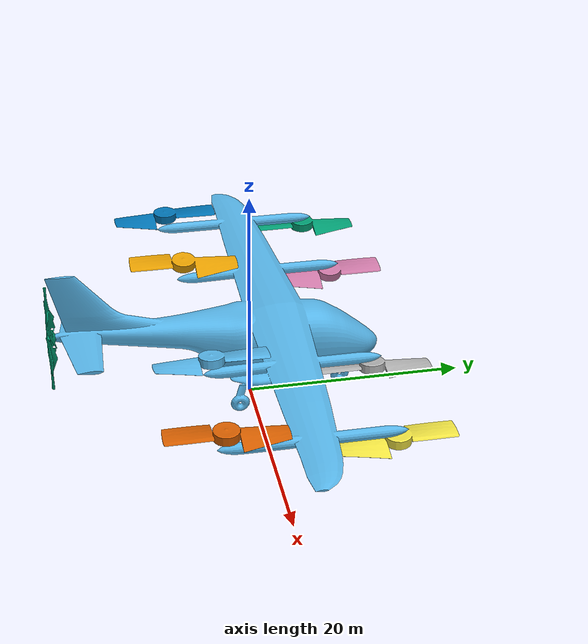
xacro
<?xml version="1.0"?>
<robot xmlns:xacro="http://www.ros.org/wiki/xacro" name="main_vtol">
    <xacro:include filename="$(find uav_description)/urdf/vtol/vtol.xacro"/>
    <xacro:arg name="robot_name" default="vtol_1"/>
    <xacro:arg name="robot_scale" default="1.0"/>
    <xacro:arg name="camera_num" default="1.0"/>

    <!-- Characteristics required by the GNSS plugin: -->
    <xacro:arg name= "world_name" default="empty_world" />
    <xacro:arg name= "initial_alt" default="50.0" />

    <!-- Define the Fog characteristics-->
    <xacro:arg name= "fog_lifetime" default = "1"/>
    <xacro:arg name= "fog_rate" default = "5"/>
    <xacro:arg name= "enable_fog" default="false"/>

    <xacro:vtol
        robot_name="$(arg robot_name)"
        robot_scale="$(arg robot_scale)"
        camera_num="$(arg camera_num)"
        world_name="$(arg world_name)"
        initial_alt="$(arg initial_alt)"
        fog_lifetime="$(arg fog_lifetime)"
        fog_rate="$(arg fog_rate)"
        enable_fog="$(arg enable_fog)"/>
</robot>

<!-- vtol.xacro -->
<robot name="vtol" xmlns:xacro="http://ros.org/wiki/xacro">

    <!-- Add the Gazebo xacro file-->
    <xacro:include filename="$(find uav_description)/urdf/vtol/vtol_gazebo.xacro"/>
    <!-- Add the for spawner file-->
    <xacro:include filename="$(find uav_description)/urdf/fixed_wing/add_fog.xacro"/>

    <xacro:macro name="vtol" params="robot_scale robot_name camera_num world_name initial_alt fog_lifetime fog_rate enable_fog">
        <!-- LINK SECTIONS OF THE VTOL-->
        <!-- Dummy link -->
        <link name="base_link"/>

        <!-- Links of the VTOL structure-->
        <link name="vtol_body">
            <inertial>
                <mass value="${2028.7 * pow(robot_scale, 3)}"/>
                <origin xyz="0.0 0.0 0.0" rpy="0 0 0"/>
                <inertia ixx="${1285.315427874 * pow(robot_scale, 5)}" ixy="0" ixz="0"
                        iyy="${1824.930976707 * pow(robot_scale, 5)}" iyz="0"
                        izz="${2666.893931043 * pow(robot_scale, 5)}"/>
            </inertial>
            <collision name="collision">
                <geometry>
                <mesh filename="file://$(find uav_description)/meshes/VTOL/body.dae"
                        scale="${robot_scale} ${robot_scale} ${robot_scale}"/>
                </geometry>
            </collision>
            <visual name="visual">
                <geometry>
                <mesh filename="file://$(find uav_description)/meshes/VTOL/body.dae"
                        scale="${robot_scale} ${robot_scale} ${robot_scale}"/>
                </geometry>
            </visual>
        </link>

        <!--Rotor 1 (Counter-Clockwise rotation)-->
        <link name="rotor1">
            <inertial>
                <mass value="${63.93 * pow(robot_scale, 3)}"/>
                <origin xyz="0.0 0.0 0.0" rpy="0 0 0"/>
                <inertia ixx="${0.001 * pow(robot_scale, 5)}" ixy="0.0" ixz="0.0"
                        iyy="${0.001 * pow(robot_scale, 5)}" iyz="0.0"
                        izz="${0.001 * pow(robot_scale, 5)}"/>
            </inertial>
            <collision name="collision">
                <geometry>
                <mesh filename="file://$(find uav_description)/meshes/VTOL/rotor1.dae"
                        scale="${robot_scale} ${robot_scale} ${robot_scale}"/>
                </geometry>
            </collision>

            <visual name="visual">
                <geometry>
                <mesh filename="file://$(find uav_description)/meshes/VTOL/rotor1.dae"
                        scale="${robot_scale} ${robot_scale} ${robot_scale}"/>
                </geometry>
            </visual>
        </link>

        <!--Rotor 4 (Counter-Clockwise rotation)-->
        <link name="rotor4">
            <inertial>
                <mass value="${63.93 * pow(robot_scale, 3)}"/>
                <origin xyz="0.0 0.0 0.0" rpy="0 0 0"/>
                <inertia ixx="${0.001 * pow(robot_scale, 5)}" ixy="0.0" ixz="0.0"
                    iyy="${0.001 * pow(robot_scale, 5)}" iyz="0.0"
                    izz="${0.001 * pow(robot_scale, 5)}"/>
            </inertial>
            <collision name="collision">
                <geometry>
                <mesh filename="file://$(find uav_description)/meshes/VTOL/rotor7.dae"
                        scale="${robot_scale} ${robot_scale} ${robot_scale}"/>
                </geometry>
            </collision>
            <visual name="visual">
                <geometry>
                <mesh filename="file://$(find uav_description)/meshes/VTOL/rotor7.dae"
                        scale="${robot_scale} ${robot_scale} ${robot_scale}"/>
                </geometry>
            </visual>
        </link>

        <!--Rotor 5 (Counter-Clockwise rotation)-->
        <link name="rotor5">
            <inertial>
                <mass value="${63.93 * pow(robot_scale, 3)}"/>
                <origin xyz="0.0 0.0 0.0" rpy="0 0 0"/>
                <inertia ixx="${0.001 * pow(robot_scale, 5)}" ixy="0.0" ixz="0.0"
                        iyy="${0.001 * pow(robot_scale, 5)}" iyz="0.0"
                        izz="${0.001 * pow(robot_scale, 5)}"/>
            </inertial>
            <collision name="collision">
                <geometry>
                <mesh filename="file://$(find uav_description)/meshes/VTOL/rotor2.dae"
                        scale="${robot_scale} ${robot_scale} ${robot_scale}"/>
                </geometry>
            </collision>

            <visual name="visual">
                <geometry>
                <mesh filename="file://$(find uav_description)/meshes/VTOL/rotor2.dae"
                        scale="${robot_scale} ${robot_scale} ${robot_scale}"/>
                </geometry>
            </visual>
        </link>

        <!--Rotor 8 (Counter-Clockwise rotation)-->
        <link name="rotor8">
            <inertial>
                <mass value="${63.93 * pow(robot_scale, 3)}"/>
                <origin xyz="0.0 0.0 0.0" rpy="0 0 0"/>
                <inertia ixx="${0.001 * pow(robot_scale, 5)}" ixy="0.0" ixz="0.0"
                        iyy="${0.001 * pow(robot_scale, 5)}" iyz="0.0"
                        izz="${0.001 * pow(robot_scale, 5)}"/>
            </inertial>
            <collision name="collision">
                <geometry>
                <mesh filename="file://$(find uav_description)/meshes/VTOL/rotor8.dae"
                        scale="${robot_scale} ${robot_scale} ${robot_scale}"/>
                </geometry>
            </collision>

            <visual name="visual">
                <geometry>
                <mesh filename="file://$(find uav_description)/meshes/VTOL/rotor8.dae"
                        scale="${robot_scale} ${robot_scale} ${robot_scale}"/>
                </geometry>
            </visual>
        </link>

        <!-- Rotor 2 (Clockwise rotation)-->
        <link name="rotor2">
            <inertial>
                <mass value="${63.93 * pow(robot_scale, 3)}"/>
                <origin xyz="0.0 0.0 0.0" rpy="0 0 0"/>
                <inertia ixx="${0.001 * pow(robot_scale, 5)}" ixy="0.0" ixz="0.0"
                        iyy="${0.001 * pow(robot_scale, 5)}" iyz="0.0"
                        izz="${0.001 * pow(robot_scale, 5)}"/>
            </inertial>
            <collision name="collision">
                <geometry>
                <mesh filename="file://$(find uav_description)/meshes/VTOL/rotor3.dae"
                        scale="${robot_scale} ${robot_scale} ${robot_scale}"/>
                </geometry>
            </collision>

            <visual name="visual">
                <geometry>
                <mesh filename="file://$(find uav_description)/meshes/VTOL/rotor3.dae"
                        scale="${robot_scale} ${robot_scale} ${robot_scale}"/>
                </geometry>
            </visual>
        </link>

        <!-- Rotor 3 (Clockwise rotation)-->
        <link name="rotor3">
            <inertial>
                <mass value="${63.93 * pow(robot_scale, 3)}"/>
                <origin xyz="0.0 0.0 0.0" rpy="0 0 0"/>
                <inertia ixx="${0.001 * pow(robot_scale, 5)}" ixy="0.0" ixz="0.0"
                        iyy="${0.001 * pow(robot_scale, 5)}" iyz="0.0"
                        izz="${0.001 * pow(robot_scale, 5)}"/>
            </inertial>
            <collision name="collision">
                <geometry>
                <mesh filename="file://$(find uav_description)/meshes/VTOL/rotor5.dae"
                        scale="${robot_scale} ${robot_scale} ${robot_scale}"/>
                </geometry>
            </collision>

            <visual name="visual">
                <geometry>
                <mesh filename="file://$(find uav_description)/meshes/VTOL/rotor5.dae"
                        scale="${robot_scale} ${robot_scale} ${robot_scale}"/>
                </geometry>
            </visual>
        </link>

        <!-- Rotor 6 (Clockwise rotation)-->
        <link name="rotor6">
            <inertial>
                <mass value="${63.93 * pow(robot_scale, 3)}"/>
                <origin xyz="0.0 0.0 0.0" rpy="0 0 0"/>
                <inertia ixx="${0.001 * pow(robot_scale, 5)}" ixy="0.0" ixz="0.0"
                        iyy="${0.001 * pow(robot_scale, 5)}" iyz="0.0"
                        izz="${0.001 * pow(robot_scale, 5)}"/>
            </inertial>
            <collision name="collision">
                <geometry>
                <mesh filename="file://$(find uav_description)/meshes/VTOL/rotor4.dae"
                        scale="${robot_scale} ${robot_scale} ${robot_scale}"/>
                </geometry>
            </collision>
            <visual name="visual">
                <geometry>
                <mesh filename="file://$(find uav_description)/meshes/VTOL/rotor4.dae"
                        scale="${robot_scale} ${robot_scale} ${robot_scale}"/>
                </geometry>
            </visual>
        </link>

        <!-- Rotor 7 (Clockwise rotation)-->
        <link name="rotor7">
            <inertial>
                <mass value="${63.93 * pow(robot_scale, 3)}"/>
                <origin xyz="0.0 0.0 0.0" rpy="0 0 0"/>
                <inertia ixx="${0.001 * pow(robot_scale, 5)}" ixy="0.0" ixz="0.0"
                        iyy="${0.001 * pow(robot_scale, 5)}" iyz="0.0"
                        izz="${0.001 * pow(robot_scale, 5)}"/>
            </inertial>
            <collision name="collision">
                <geometry>
                <mesh filename="file://$(find uav_description)/meshes/VTOL/rotor6.dae"
                        scale="${robot_scale} ${robot_scale} ${robot_scale}"/>
                </geometry>
            </collision>
            <visual name="visual">
                <geometry>
                <mesh filename="file://$(find uav_description)/meshes/VTOL/rotor6.dae"
                        scale="${robot_scale} ${robot_scale} ${robot_scale}"/>
                </geometry>
            </visual>
        </link>

        <!-- Propeller rotor -->
        <link name="rotor9">
            <inertial>
                <mass value="${112.91 * pow(robot_scale, 3)}"/>
                <origin xyz="0.0 0.0 0.0" rpy="0 0 0"/>
                <inertia ixx="${0.001 * pow(robot_scale, 5)}" ixy="0.0" ixz="0.0"
                        iyy="${0.001 * pow(robot_scale, 5)}" iyz="0.0"
                        izz="${0.001 * pow(robot_scale, 5)}"/>
            </inertial>
            <collision name="collision">
                <geometry>
                <mesh filename="file://$(find uav_description)/meshes/VTOL/rotor9.dae"
                        scale="${robot_scale} ${robot_scale} ${robot_scale}"/>
                </geometry>
            </collision>

            <visual name="visual">
                <geometry>
                <mesh filename="file://$(find uav_description)/meshes/VTOL/rotor9.dae"
                        scale="${robot_scale} ${robot_scale} ${robot_scale}"/>
                </geometry>
            </visual>
        </link>

        <!-- Fixed joint to dummy link -->
        <joint name="vtol_joint" type="fixed">
            <origin xyz="0.0 0.0 0.0" rpy="0.0 0.0 1.5708"/>
            <parent link="base_link"/>
            <child link="vtol_body"/>
        </joint>
        <!-- Counter clockwise rotors -->
        <joint name="rotor1_joint" type="continuous">
            <parent link="vtol_body"/>
            <child link="rotor1"/>
            <origin xyz="${8.85* robot_scale} ${18.75 * robot_scale} ${6.7861 * robot_scale}" rpy="0 0 0"/>
            <axis xyz="0 0 1"/>
            <dynamics damping="0.01" friction="0.0"/>
        </joint>
        <joint name="rotor4_joint" type="continuous">
            <parent link="vtol_body"/>
            <child link="rotor4"/>
            <origin xyz="${8.85 * robot_scale} ${-18.75 * robot_scale} ${6.7861 * robot_scale}" rpy="0 0 0"/>
            <axis xyz="0 0 1"/>
            <dynamics damping="0.01" friction="0.0"/>
        </joint>
        <joint name="rotor5_joint" type="continuous">
            <parent link="vtol_body"/>
            <child link="rotor5"/>
            <origin xyz="${-5.28 * robot_scale} ${18.75 * robot_scale} ${9.0661 * robot_scale}" rpy="0 0 0"/>
            <axis xyz="0 0 1"/>
            <dynamics damping="0.01" friction="0.0"/>
        </joint>
        <joint name="rotor8_joint" type="continuous">
            <parent link="vtol_body"/>
            <child link="rotor8"/>
            <origin xyz="${-5.28 * robot_scale} ${-18.75 * robot_scale} ${9.0661 * robot_scale}" rpy="0 0 0"/>
            <axis xyz="0 0 1"/>
            <dynamics damping="0.01" friction="0.0"/>
        </joint>
        <!--Clockwise rotors -->
        <joint name="rotor2_joint" type="continuous">
            <parent link="vtol_body"/>
            <child link="rotor2"/>
            <origin xyz="${9.289 * robot_scale} ${8.1378 * robot_scale} ${7.0955 * robot_scale}" rpy="0 0 0"/>
            <axis xyz="0 0.139 -0.99"/>
            <dynamics damping="0.01" friction="0.0"/>
        </joint>
        <joint name="rotor3_joint" type="continuous">
            <parent link="vtol_body"/>
            <child link="rotor3"/>
            <origin xyz="${9.289 * robot_scale} ${-8.4578 * robot_scale} ${7.0955 * robot_scale}" rpy="0 0 0"/>
            <axis xyz="0 -0.139 -0.99"/>
            <dynamics damping="0.01" friction="0.0"/>
        </joint>
        <joint name="rotor6_joint" type="continuous">
            <parent link="vtol_body"/>
            <child link="rotor6"/>
            <origin xyz="${-4.84 * robot_scale} ${8.4578 * robot_scale} ${9.3555 * robot_scale}" rpy="0 0 0"/>
            <axis xyz="0 0.139 -0.99"/>
            <dynamics damping="0.01" friction="0.0"/>
        </joint>
        <joint name="rotor7_joint" type="continuous">
            <parent link="vtol_body"/>
            <child link="rotor7"/>
            <origin xyz="${-4.84 * robot_scale} ${-8.4578 * robot_scale} ${9.3555 * robot_scale}" rpy="0 0 0"/>
            <axis xyz="0 -0.139 -0.99"/>
            <dynamics damping="0.01" friction="0.0"/>
        </joint>
        <!--Propulsion rotors -->
        <joint name="rotor9_joint" type="continuous">
            <parent link="vtol_body"/>
            <child link="rotor9"/>
            <origin xyz="${-18.062* robot_scale} ${0 * robot_scale} ${7.79 * robot_scale}" rpy="0 0 0"/>
            <axis xyz="-1 0 0"/>
            <dynamics damping="0.01" friction="0.0"/>
        </joint>

        <!-- Link of the sensors by Jorge -->
        <!-- Frontal camera link:-->
        <link name="frontal_camera_link">
            <visual>
                <origin xyz="0 0 0" rpy="0 0 0"/>
                <geometry>
                    <box size="${0.02 * robot_scale} ${0.02 * robot_scale} ${0.02 * robot_scale}"/>
                </geometry>
            </visual>
            <inertial>
                <mass value="${0.001 * robot_scale}" />
                <origin xyz="0 0 0" rpy="0 0 0"/>
                <inertia ixx="0.00000015" ixy="0" ixz="0" iyy="0.00000015" iyz="0" izz="0.00000015" />
            </inertial>
        </link>
        <!-- GNSS Link for the Lidar sensor-->
        <link name="lidar_link">
            <visual>
                <origin xyz="0 0 0" rpy="0 0 0"/>
                <geometry>
                    <box size="${0.02 * robot_scale} ${0.02 * robot_scale} ${0.02 * robot_scale}"/>
                </geometry>
            </visual>
            <inertial>
                <mass value="${0.001 * robot_scale}" />
                <origin xyz="0 0 0" rpy="0 0 0"/>
                <inertia ixx="0.00000015" ixy="0" ixz="0" iyy="0.00000015" iyz="0" izz="0.00000015" />
            </inertial>
        </link>
        <!--IMU Link for teh ADS-B Reciever-->
        <link name="imu_link">
            <visual>
                <origin xyz="0 0 0" rpy="0 0 0"/>
                <geometry>
                    <box size="${0.02 * robot_scale} ${0.02 * robot_scale} ${0.02 * robot_scale}"/>
                </geometry>
            </visual>
            <inertial>
                <mass value="${0.001 * robot_scale}" />
                <origin xyz="0 0 0" rpy="0 0 0"/>
                <inertia ixx="0.00000015" ixy="0" ixz="0" iyy="0.00000015" iyz="0" izz="0.00000015" />
            </inertial>
        </link>

        <!-- Joint of the sensors or plugin requirements -->
        <!-- Frontal camera fized joint-->
        <joint name="frontal_camera_link_joint" type="fixed">
            <origin rpy="0 0 0" xyz="${1.05 * robot_scale} 0.0 0.0"/>
            <parent link="vtol_body"/>
            <child link="frontal_camera_link"/>
        </joint>
        <!-- GNSS Lidar joint-->
        <joint name="lidar_link_joint" type="fixed">
            <origin rpy="0 0 0" xyz="0.0 0.0 ${1.7 * robot_scale}"/>
            <parent link="vtol_body"/>
            <child link="lidar_link"/>
        </joint>
        <!-- IMU lidar joint-->
        <joint name="imu_link_joint" type="fixed">
            <origin rpy="0 0 0" xyz="0.0 0.0 0.0"/>
            <parent link="vtol_body"/>
            <child link="imu_link"/>
        </joint>

        <!-- Add a camera to follow the vtol -->
        <link name="follow_camera_link">
            <visual>
                <origin xyz="0 0 0" rpy="0 0 0"/>
                <geometry>
                    <box size="${0.02 * robot_scale} ${0.02 * robot_scale} ${0.02 * robot_scale}"/>
                </geometry>
            </visual>
            <inertial>
                <mass value="${0.001 * robot_scale}" />
                <origin xyz="0 0 0" rpy="0 0 0"/>
                <inertia ixx="0.00000015" ixy="0" ixz="0" iyy="0.00000015" iyz="0" izz="0.00000015" />
            </inertial>
        </link>

        <joint name="follow_camera_link_joint" type="fixed">
            <origin xyz="${-36.08 * robot_scale} 0.0 ${20.0 * robot_scale}" rpy="0.0 0.5 0.0"/>
            <parent link="base_link"/>
            <child link="follow_camera_link"/>
        </joint>

        <!-- Input the gazebo sim pluggin xacro document-->
        <xacro:vtol_sim robot_name="$(arg robot_name)" camera_num="$(arg camera_num)" robot_scale="$(arg robot_scale)" world_name="$(arg world_name)" initial_alt="$(arg initial_alt)"/>

        <!-- Add the fog only if it is required -->
        <xacro:if value="$(arg enable_fog)">
            <xacro:add_fog robot_scale="$(arg robot_scale)" fog_lifetime="$(arg fog_lifetime)" fog_rate="$(arg fog_rate)"/>
        </xacro:if>
    </xacro:macro>

</robot>
